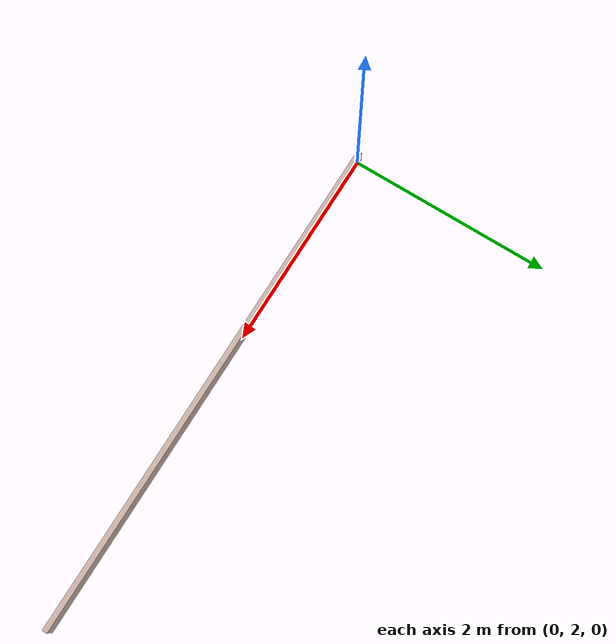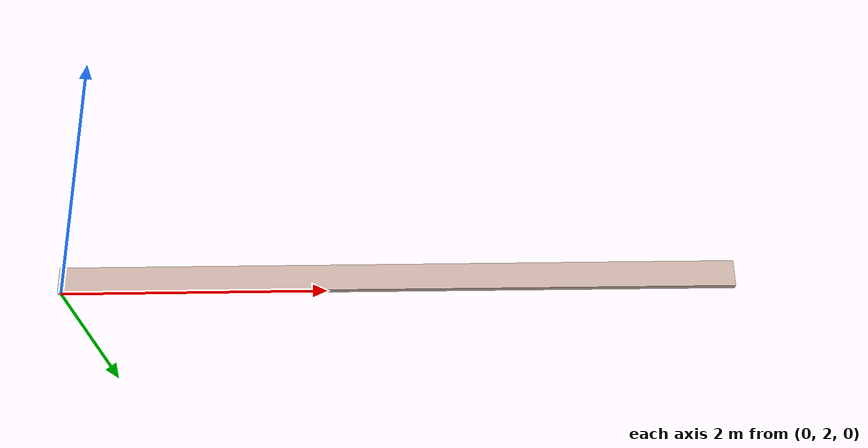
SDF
<?xml version='1.0'?>
<sdf version='1.7'>
  <model name='wall_5'>
    <pose>2.5 1.0125 0 0 -0 0</pose>
    <link name='Wall_9'>
      <collision name='Wall_9_Collision'>
        <geometry>
          <box>
            <size>5.05 0.05 0.2</size>
          </box>
        </geometry>
        <pose>0 0 0.1 0 -0 0</pose>
      </collision>
      <visual name='Wall_9_Visual'>
        <pose>0 0 0.1 0 -0 0</pose>
        <geometry>
          <box>
            <size>5.05 0.05 0.2</size>
          </box>
        </geometry>
        <material>
          <script>
            <uri>file://media/materials/scripts/gazebo.material</uri>
            <name>Gazebo/Grey</name>
          </script>
          <ambient>0.760784 0.662745 0.627451 1</ambient>
        </material>
        <meta>
          <layer>0</layer>
        </meta>
      </visual>
      <pose>0 0.9875 0 0 -0 0</pose>
    </link>
    <static>1</static>
  </model>
</sdf>
